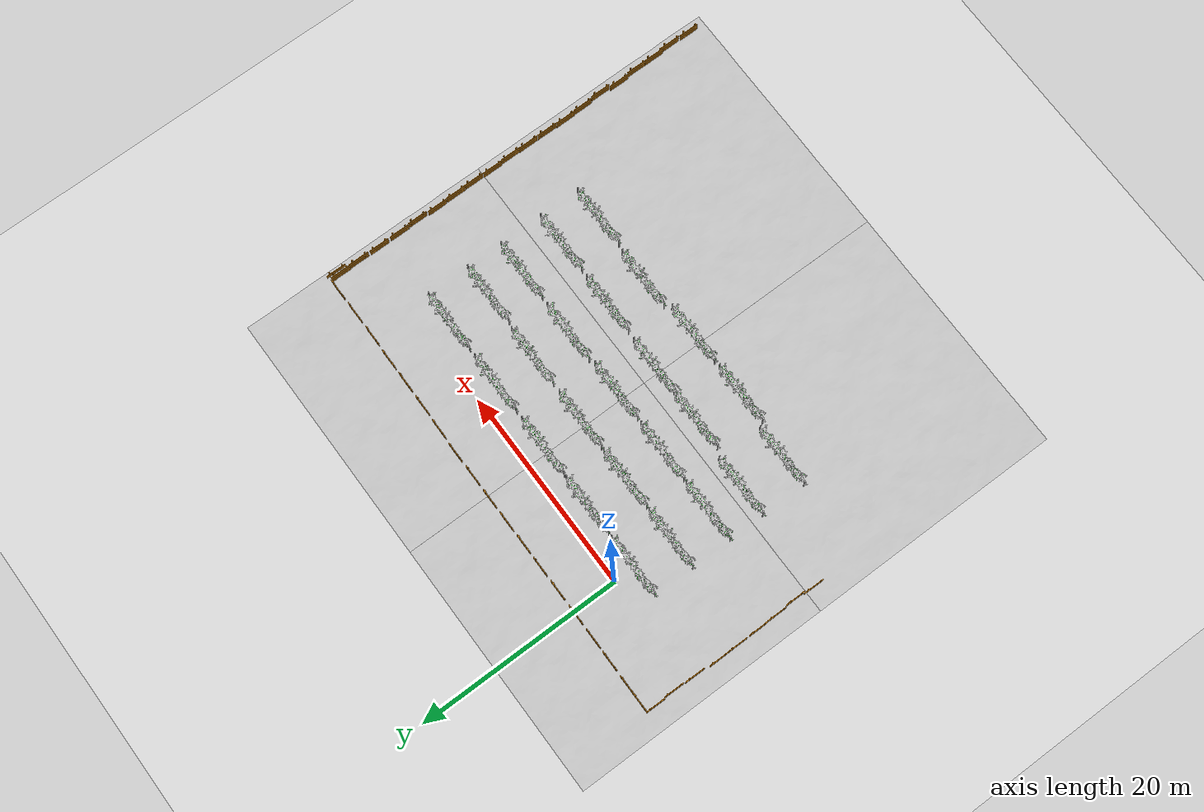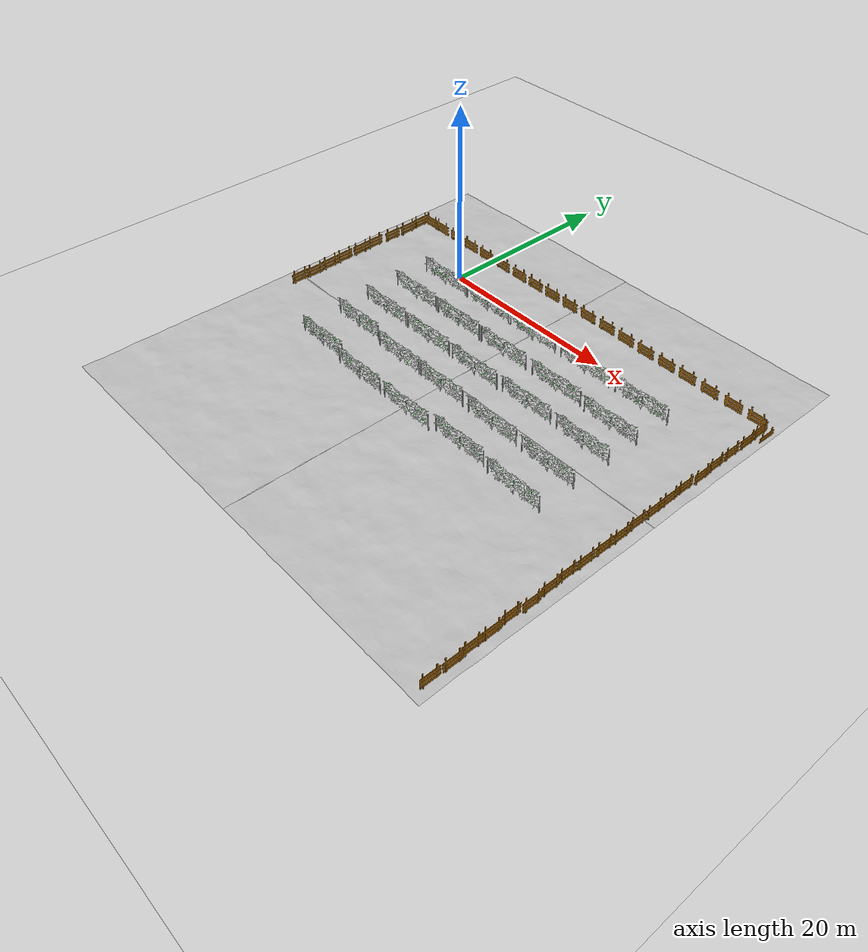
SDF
<sdf version="1.6">
 <world name="default">
  <light name="sun" type="directional">
   <pose>0 0 10 0 -0 0</pose>
   <diffuse>0.8 0.8 0.8 1</diffuse>
   <specular>0.2 0.2 0.2 1</specular>
   <attenuation>
    <range>1000</range>
    <constant>0.9</constant>
    <linear>0.01</linear>
    <quadratic>0.001</quadratic>
   </attenuation>
   <direction>-0.5 0.1 -0.9</direction>
  </light>
  <physics name="default_physics" default="0" type="ode">
   <real_time_update_rate>1000</real_time_update_rate>
   <real_time_factor>1</real_time_factor>
   <max_step_size>0.001</max_step_size>
  </physics>
  <gravity>0 0 -9.8</gravity>
  <magnetic_field>6e-06 2.3e-05 -4.2e-05</magnetic_field>
  <atmosphere type="adiabatic"/>
  <scene>
   <sky><clouds><speed>12</speed></clouds></sky>
   <shadows>1</shadows>
   <ambient>0.4 0.4 0.4 1</ambient>
   <background>0.7 0.7 0.7 1</background>
  </scene>
  <spherical_coordinates>
   <surface_model>EARTH_WGS84</surface_model>
   <latitude_deg>0</latitude_deg>
   <longitude_deg>0</longitude_deg>
   <elevation>0</elevation>
   <heading_deg>0</heading_deg>
  </spherical_coordinates>
  <model name="grass_ground_plane">
   <static>1</static>
   <link name="link">
    <collision name="collision">
     <geometry><plane><normal>0 0 1</normal><size>200 200</size></plane></geometry>
     <surface><friction><ode><mu>0.5</mu><mu2>0.5</mu2></ode></friction></surface>
    </collision>
    <visual name="visual">
     <cast_shadows>0</cast_shadows>
     <geometry><plane><normal>0 0 1</normal><size>200 200</size></plane></geometry>
     <material>
      <script>
       <uri>model://grass_ground_plane/materials/scripts/grass_ground_plane.material</uri>
       <name>GrassGroundPlane/Image</name>
      </script>
     </material>
    </visual>
   </link>
  </model>
  <model name="heightmap">
   <static>1</static>
   <link name="link">
    <collision name="collision">
     <geometry><mesh><uri>model://heightmap_realistic/meshes/heightmap.dae</uri></mesh></geometry>
    </collision>
    <visual name="visual">
     <geometry><mesh><uri>model://heightmap_realistic/meshes/heightmap.dae</uri></mesh></geometry>
    </visual>
   </link>
  </model>
  <model name="heightmap_1">
   <static>1</static>
   <link name="link">
    <collision name="collision">
     <geometry><mesh><uri>model://heightmap_realistic/meshes/heightmap.dae</uri></mesh></geometry>
    </collision>
    <visual name="visual">
     <geometry><mesh><uri>model://heightmap_realistic/meshes/heightmap.dae</uri></mesh></geometry>
    </visual>
   </link>
   <pose>25 -25 0 0 -0 0</pose>
  </model>
  <model name="heightmap_2">
   <static>1</static>
   <link name="link">
    <collision name="collision">
     <geometry><mesh><uri>model://heightmap_realistic/meshes/heightmap.dae</uri></mesh></geometry>
    </collision>
    <visual name="visual">
     <geometry><mesh><uri>model://heightmap_realistic/meshes/heightmap.dae</uri></mesh></geometry>
    </visual>
   </link>
   <pose>0 -25 0 0 -0 0</pose>
  </model>
  <model name="vine_t0_coarse">
   <static>1</static>
   <link name="link">
    <collision name="collision">
     <geometry><mesh><uri>model://vine_t0_coarse/meshes/vine_t0_coarse.dae</uri></mesh></geometry>
    </collision>
    <visual name="visual">
     <geometry><mesh><uri>model://vine_t0_coarse/meshes/vine_t0_coarse.dae</uri></mesh></geometry>
    </visual>
   </link>
   <pose>0 -2 0 0 -0 0</pose>
  </model>
  <model name="vine_t0_coarse_clone">
   <static>1</static>
   <link name="link">
    <collision name="collision">
     <geometry><mesh><uri>model://vine_t0_coarse/meshes/vine_t0_coarse.dae</uri></mesh></geometry>
    </collision>
    <visual name="visual">
     <geometry><mesh><uri>model://vine_t0_coarse/meshes/vine_t0_coarse.dae</uri></mesh></geometry>
    </visual>
   </link>
   <pose>6.5 -2 0 0 -0 0</pose>
  </model>
  <model name="vine_t0_coarse_clone_clone">
   <static>1</static>
   <link name="link">
    <collision name="collision">
     <geometry><mesh><uri>model://vine_t0_coarse/meshes/vine_t0_coarse.dae</uri></mesh></geometry>
    </collision>
    <visual name="visual">
     <geometry><mesh><uri>model://vine_t0_coarse/meshes/vine_t0_coarse.dae</uri></mesh></geometry>
    </visual>
   </link>
   <pose>13 -2 0 0 -0 0</pose>
  </model>
  <model name="vine_t0_coarse_clone_clone_0">
   <static>1</static>
   <link name="link">
    <collision name="collision">
     <geometry><mesh><uri>model://vine_t0_coarse/meshes/vine_t0_coarse.dae</uri></mesh></geometry>
    </collision>
    <visual name="visual">
     <geometry><mesh><uri>model://vine_t0_coarse/meshes/vine_t0_coarse.dae</uri></mesh></geometry>
    </visual>
   </link>
   <pose>20 -2 0 0 -0 0</pose>
  </model>
  <model name="vine_t0_coarse_clone_clone_1">
   <static>1</static>
   <link name="link">
    <collision name="collision">
     <geometry><mesh><uri>model://vine_t0_coarse/meshes/vine_t0_coarse.dae</uri></mesh></geometry>
    </collision>
    <visual name="visual">
     <geometry><mesh><uri>model://vine_t0_coarse/meshes/vine_t0_coarse.dae</uri></mesh></geometry>
    </visual>
   </link>
   <pose>27 -2 0 0 -0 0</pose>
  </model>
  <model name="vine_t0_coarse_clone_clone_2">
   <static>1</static>
   <link name="link">
    <collision name="collision">
     <geometry><mesh><uri>model://vine_t0_coarse/meshes/vine_t0_coarse.dae</uri></mesh></geometry>
    </collision>
    <visual name="visual">
     <geometry><mesh><uri>model://vine_t0_coarse/meshes/vine_t0_coarse.dae</uri></mesh></geometry>
    </visual>
   </link>
   <pose>0 -6 0 0 -0 0</pose>
  </model>
  <model name="vine_t0_coarse_clone_clone_3">
   <static>1</static>
   <link name="link">
    <collision name="collision">
     <geometry><mesh><uri>model://vine_t0_coarse/meshes/vine_t0_coarse.dae</uri></mesh></geometry>
    </collision>
    <visual name="visual">
     <geometry><mesh><uri>model://vine_t0_coarse/meshes/vine_t0_coarse.dae</uri></mesh></geometry>
    </visual>
   </link>
   <pose>0 -10 0 0 -0 0</pose>
  </model>
  <model name="vine_t0_coarse_clone_clone_4">
   <static>1</static>
   <link name="link">
    <collision name="collision">
     <geometry><mesh><uri>model://vine_t0_coarse/meshes/vine_t0_coarse.dae</uri></mesh></geometry>
    </collision>
    <visual name="visual">
     <geometry><mesh><uri>model://vine_t0_coarse/meshes/vine_t0_coarse.dae</uri></mesh></geometry>
    </visual>
   </link>
   <pose>0 -13.54 0 0 -0 0</pose>
  </model>
  <model name="vine_t0_coarse_clone_clone_5">
   <static>1</static>
   <link name="link">
    <collision name="collision">
     <geometry><mesh><uri>model://vine_t0_coarse/meshes/vine_t0_coarse.dae</uri></mesh></geometry>
    </collision>
    <visual name="visual">
     <geometry><mesh><uri>model://vine_t0_coarse/meshes/vine_t0_coarse.dae</uri></mesh></geometry>
    </visual>
   </link>
   <pose>6.5 -6 0 0 -0 0</pose>
  </model>
  <model name="vine_t0_coarse_clone_clone_6">
   <static>1</static>
   <link name="link">
    <collision name="collision">
     <geometry><mesh><uri>model://vine_t0_coarse/meshes/vine_t0_coarse.dae</uri></mesh></geometry>
    </collision>
    <visual name="visual">
     <geometry><mesh><uri>model://vine_t0_coarse/meshes/vine_t0_coarse.dae</uri></mesh></geometry>
    </visual>
   </link>
   <pose>6.5 -10 0 0 -0 0</pose>
  </model>
  <model name="vine_t0_coarse_clone_clone_7">
   <static>1</static>
   <link name="link">
    <collision name="collision">
     <geometry><mesh><uri>model://vine_t0_coarse/meshes/vine_t0_coarse.dae</uri></mesh></geometry>
    </collision>
    <visual name="visual">
     <geometry><mesh><uri>model://vine_t0_coarse/meshes/vine_t0_coarse.dae</uri></mesh></geometry>
    </visual>
   </link>
   <pose>7 -14 0 0 -0 0</pose>
  </model>
  <model name="vine_t0_coarse_clone_clone_8">
   <static>1</static>
   <link name="link">
    <collision name="collision">
     <geometry><mesh><uri>model://vine_t0_coarse/meshes/vine_t0_coarse.dae</uri></mesh></geometry>
    </collision>
    <visual name="visual">
     <geometry><mesh><uri>model://vine_t0_coarse/meshes/vine_t0_coarse.dae</uri></mesh></geometry>
    </visual>
   </link>
   <pose>13 -6 0 0 -0 0</pose>
  </model>
  <model name="vine_t0_coarse_clone_clone_9">
   <static>1</static>
   <link name="link">
    <collision name="collision">
     <geometry><mesh><uri>model://vine_t0_coarse/meshes/vine_t0_coarse.dae</uri></mesh></geometry>
    </collision>
    <visual name="visual">
     <geometry><mesh><uri>model://vine_t0_coarse/meshes/vine_t0_coarse.dae</uri></mesh></geometry>
    </visual>
   </link>
   <pose>13.2 -10 0 0 -0 0</pose>
  </model>
  <model name="vine_t0_coarse_clone_clone_10">
   <static>1</static>
   <link name="link">
    <collision name="collision">
     <geometry><mesh><uri>model://vine_t0_coarse/meshes/vine_t0_coarse.dae</uri></mesh></geometry>
    </collision>
    <visual name="visual">
     <geometry><mesh><uri>model://vine_t0_coarse/meshes/vine_t0_coarse.dae</uri></mesh></geometry>
    </visual>
   </link>
   <pose>12.9 -14 0 0 -0 0</pose>
  </model>
  <model name="vine_t0_coarse_clone_clone_11">
   <static>1</static>
   <link name="link">
    <collision name="collision">
     <geometry><mesh><uri>model://vine_t0_coarse/meshes/vine_t0_coarse.dae</uri></mesh></geometry>
    </collision>
    <visual name="visual">
     <geometry><mesh><uri>model://vine_t0_coarse/meshes/vine_t0_coarse.dae</uri></mesh></geometry>
    </visual>
   </link>
   <pose>20.1 -6.0129 0 0 -0 0</pose>
  </model>
  <model name="vine_t0_coarse_clone_clone_12">
   <static>1</static>
   <link name="link">
    <collision name="collision">
     <geometry><mesh><uri>model://vine_t0_coarse/meshes/vine_t0_coarse.dae</uri></mesh></geometry>
    </collision>
    <visual name="visual">
     <geometry><mesh><uri>model://vine_t0_coarse/meshes/vine_t0_coarse.dae</uri></mesh></geometry>
    </visual>
   </link>
   <pose>20 -9.8135 0 0 -0 0</pose>
  </model>
  <model name="vine_t0_coarse_clone_clone_13">
   <static>1</static>
   <link name="link">
    <collision name="collision">
     <geometry><mesh><uri>model://vine_t0_coarse/meshes/vine_t0_coarse.dae</uri></mesh></geometry>
    </collision>
    <visual name="visual">
     <geometry><mesh><uri>model://vine_t0_coarse/meshes/vine_t0_coarse.dae</uri></mesh></geometry>
    </visual>
   </link>
   <pose>20 -14.1038 0 0 -0 0</pose>
  </model>
  <model name="vine_t0_coarse_clone_clone_14">
   <static>1</static>
   <link name="link">
    <collision name="collision">
     <geometry><mesh><uri>model://vine_t0_coarse/meshes/vine_t0_coarse.dae</uri></mesh></geometry>
    </collision>
    <visual name="visual">
     <geometry><mesh><uri>model://vine_t0_coarse/meshes/vine_t0_coarse.dae</uri></mesh></geometry>
    </visual>
   </link>
   <pose>27 -6.2199 0 0 -0 0</pose>
  </model>
  <model name="vine_t0_coarse_clone_clone_15">
   <static>1</static>
   <link name="link">
    <collision name="collision">
     <geometry><mesh><uri>model://vine_t0_coarse/meshes/vine_t0_coarse.dae</uri></mesh></geometry>
    </collision>
    <visual name="visual">
     <geometry><mesh><uri>model://vine_t0_coarse/meshes/vine_t0_coarse.dae</uri></mesh></geometry>
    </visual>
   </link>
   <pose>27 -9.8499 0 0 -0 0</pose>
  </model>
  <model name="vine_t0_coarse_clone_clone_16">
   <static>1</static>
   <link name="link">
    <collision name="collision">
     <geometry><mesh><uri>model://vine_t0_coarse/meshes/vine_t0_coarse.dae</uri></mesh></geometry>
    </collision>
    <visual name="visual">
     <geometry><mesh><uri>model://vine_t0_coarse/meshes/vine_t0_coarse.dae</uri></mesh></geometry>
    </visual>
   </link>
   <pose>27 -14.1902 0 0 -0 0</pose>
  </model>
  <model name="vine_t0_coarse_clone_clone_17">
   <static>1</static>
   <link name="link">
    <collision name="collision">
     <geometry><mesh><uri>model://vine_t0_coarse/meshes/vine_t0_coarse.dae</uri></mesh></geometry>
    </collision>
    <visual name="visual">
     <geometry><mesh><uri>model://vine_t0_coarse/meshes/vine_t0_coarse.dae</uri></mesh></geometry>
    </visual>
   </link>
   <pose>0 -18 0 0 -0 0</pose>
  </model>
  <model name="vine_t0_coarse_clone_clone_18">
   <static>1</static>
   <link name="link">
    <collision name="collision">
     <geometry><mesh><uri>model://vine_t0_coarse/meshes/vine_t0_coarse.dae</uri></mesh></geometry>
    </collision>
    <visual name="visual">
     <geometry><mesh><uri>model://vine_t0_coarse/meshes/vine_t0_coarse.dae</uri></mesh></geometry>
    </visual>
   </link>
   <pose>6.5 -18.5457 0 0 -0 0</pose>
  </model>
  <model name="vine_t0_coarse_clone_clone_19">
   <static>1</static>
   <link name="link">
    <collision name="collision">
     <geometry><mesh><uri>model://vine_t0_coarse/meshes/vine_t0_coarse.dae</uri></mesh></geometry>
    </collision>
    <visual name="visual">
     <geometry><mesh><uri>model://vine_t0_coarse/meshes/vine_t0_coarse.dae</uri></mesh></geometry>
    </visual>
   </link>
   <pose>13.3 -18.5 0 0 -0 0</pose>
  </model>
  <model name="vine_t0_coarse_clone_clone_20">
   <static>1</static>
   <link name="link">
    <collision name="collision">
     <geometry><mesh><uri>model://vine_t0_coarse/meshes/vine_t0_coarse.dae</uri></mesh></geometry>
    </collision>
    <visual name="visual">
     <geometry><mesh><uri>model://vine_t0_coarse/meshes/vine_t0_coarse.dae</uri></mesh></geometry>
    </visual>
   </link>
   <pose>20 -18 0 0 -0 0</pose>
  </model>
  <model name="vine_t0_coarse_clone_clone_21">
   <static>1</static>
   <link name="link">
    <collision name="collision">
     <geometry><mesh><uri>model://vine_t0_coarse/meshes/vine_t0_coarse.dae</uri></mesh></geometry>
    </collision>
    <visual name="visual">
     <geometry><mesh><uri>model://vine_t0_coarse/meshes/vine_t0_coarse.dae</uri></mesh></geometry>
    </visual>
   </link>
   <pose>27 -18.2744 0 0 -0 0</pose>
  </model>
  <model name="wooden_fence_12">
   <static>1</static>
   <link name="link">
    <inertial>
     <mass>100</mass>
     <inertia><ixx>192.33</ixx><ixy>0</ixy><ixz>0</ixz><iyy>12.33</iyy><iyz>0</iyz><izz>204</izz></inertia>
    </inertial>
    <collision name="collision">
     <geometry><mesh><uri>model://wooden_fence/meshes/fence.dae</uri><scale>1 1 1</scale></mesh></geometry>
    </collision>
    <visual name="visual">
     <geometry><mesh><uri>model://wooden_fence/meshes/fence.dae</uri><scale>1 1 1</scale></mesh></geometry>
    </visual>
   </link>
   <pose>35.9913 1.73301 0 0 -0 1.5708</pose>
  </model>
  <model name="wooden_fence_16">
   <static>1</static>
   <link name="link">
    <inertial>
     <mass>100</mass>
     <inertia><ixx>192.33</ixx><ixy>0</ixy><ixz>0</ixz><iyy>12.33</iyy><iyz>0</iyz><izz>204</izz></inertia>
    </inertial>
    <collision name="collision">
     <geometry><mesh><uri>model://wooden_fence/meshes/fence.dae</uri><scale>1 1 1</scale></mesh></geometry>
    </collision>
    <visual name="visual">
     <geometry><mesh><uri>model://wooden_fence/meshes/fence.dae</uri><scale>1 1 1</scale></mesh></geometry>
    </visual>
   </link>
   <pose>-9.2867 5.4693 0.66 0 -0 0</pose>
  </model>
  <model name="heightmap_0">
   <static>1</static>
   <link name="link">
    <collision name="collision">
     <geometry><mesh><uri>model://heightmap_realistic/meshes/heightmap.dae</uri></mesh></geometry>
    </collision>
    <visual name="visual">
     <geometry><mesh><uri>model://heightmap_realistic/meshes/heightmap.dae</uri></mesh></geometry>
    </visual>
   </link>
   <pose>25 0 0 0 -0 0</pose>
  </model>
  <model name="wooden_fence">
   <static>1</static>
   <link name="link">
    <inertial>
     <mass>100</mass>
     <inertia><ixx>192.33</ixx><ixy>0</ixy><ixz>0</ixz><iyy>12.33</iyy><iyz>0</iyz><izz>204</izz></inertia>
    </inertial>
    <collision name="collision">
     <geometry><mesh><uri>model://wooden_fence/meshes/fence.dae</uri><scale>1 1 1</scale></mesh></geometry>
    </collision>
    <visual name="visual">
     <geometry><mesh><uri>model://wooden_fence/meshes/fence.dae</uri><scale>1 1 1</scale></mesh></geometry>
    </visual>
   </link>
   <pose>-6.79434 5.4444 0.66 0 -0 0</pose>
  </model>
  <model name="wooden_fence_0">
   <static>1</static>
   <link name="link">
    <inertial>
     <mass>100</mass>
     <inertia><ixx>192.33</ixx><ixy>0</ixy><ixz>0</ixz><iyy>12.33</iyy><iyz>0</iyz><izz>204</izz></inertia>
    </inertial>
    <collision name="collision">
     <geometry><mesh><uri>model://wooden_fence/meshes/fence.dae</uri><scale>1 1 1</scale></mesh></geometry>
    </collision>
    <visual name="visual">
     <geometry><mesh><uri>model://wooden_fence/meshes/fence.dae</uri><scale>1 1 1</scale></mesh></geometry>
    </visual>
   </link>
   <pose>-4.44566 5.42359 0.66 0 -0 0</pose>
  </model>
  <model name="wooden_fence_1">
   <static>1</static>
   <link name="link">
    <inertial>
     <mass>100</mass>
     <inertia><ixx>192.33</ixx><ixy>0</ixy><ixz>0</ixz><iyy>12.33</iyy><iyz>0</iyz><izz>204</izz></inertia>
    </inertial>
    <collision name="collision">
     <geometry><mesh><uri>model://wooden_fence/meshes/fence.dae</uri><scale>1 1 1</scale></mesh></geometry>
    </collision>
    <visual name="visual">
     <geometry><mesh><uri>model://wooden_fence/meshes/fence.dae</uri><scale>1 1 1</scale></mesh></geometry>
    </visual>
   </link>
   <pose>-1.94114 5.41665 0.66 0 -0 0</pose>
  </model>
  <model name="wooden_fence_2">
   <static>1</static>
   <link name="link">
    <inertial>
     <mass>100</mass>
     <inertia><ixx>192.33</ixx><ixy>0</ixy><ixz>0</ixz><iyy>12.33</iyy><iyz>0</iyz><izz>204</izz></inertia>
    </inertial>
    <collision name="collision">
     <geometry><mesh><uri>model://wooden_fence/meshes/fence.dae</uri><scale>1 1 1</scale></mesh></geometry>
    </collision>
    <visual name="visual">
     <geometry><mesh><uri>model://wooden_fence/meshes/fence.dae</uri><scale>1 1 1</scale></mesh></geometry>
    </visual>
   </link>
   <pose>0.640969 5.40785 0.66 0 -0 0</pose>
  </model>
  <model name="wooden_fence_3">
   <static>1</static>
   <link name="link">
    <inertial>
     <mass>100</mass>
     <inertia><ixx>192.33</ixx><ixy>0</ixy><ixz>0</ixz><iyy>12.33</iyy><iyz>0</iyz><izz>204</izz></inertia>
    </inertial>
    <collision name="collision">
     <geometry><mesh><uri>model://wooden_fence/meshes/fence.dae</uri><scale>1 1 1</scale></mesh></geometry>
    </collision>
    <visual name="visual">
     <geometry><mesh><uri>model://wooden_fence/meshes/fence.dae</uri><scale>1 1 1</scale></mesh></geometry>
    </visual>
   </link>
   <pose>3.18548 5.41094 0.66 0 -0 0</pose>
  </model>
  <model name="wooden_fence_4">
   <static>1</static>
   <link name="link">
    <inertial>
     <mass>100</mass>
     <inertia><ixx>192.33</ixx><ixy>0</ixy><ixz>0</ixz><iyy>12.33</iyy><iyz>0</iyz><izz>204</izz></inertia>
    </inertial>
    <collision name="collision">
     <geometry><mesh><uri>model://wooden_fence/meshes/fence.dae</uri><scale>1 1 1</scale></mesh></geometry>
    </collision>
    <visual name="visual">
     <geometry><mesh><uri>model://wooden_fence/meshes/fence.dae</uri><scale>1 1 1</scale></mesh></geometry>
    </visual>
   </link>
   <pose>5.60159 5.40146 0.66 0 -0 0</pose>
  </model>
  <model name="wooden_fence_5">
   <static>1</static>
   <link name="link">
    <inertial>
     <mass>100</mass>
     <inertia><ixx>192.33</ixx><ixy>0</ixy><ixz>0</ixz><iyy>12.33</iyy><iyz>0</iyz><izz>204</izz></inertia>
    </inertial>
    <collision name="collision">
     <geometry><mesh><uri>model://wooden_fence/meshes/fence.dae</uri><scale>1 1 1</scale></mesh></geometry>
    </collision>
    <visual name="visual">
     <geometry><mesh><uri>model://wooden_fence/meshes/fence.dae</uri><scale>1 1 1</scale></mesh></geometry>
    </visual>
   </link>
   <pose>8.02873 5.41528 0.66 0 -0 0</pose>
  </model>
  <model name="wooden_fence_6">
   <static>1</static>
   <link name="link">
    <inertial>
     <mass>100</mass>
     <inertia><ixx>192.33</ixx><ixy>0</ixy><ixz>0</ixz><iyy>12.33</iyy><iyz>0</iyz><izz>204</izz></inertia>
    </inertial>
    <collision name="collision">
     <geometry><mesh><uri>model://wooden_fence/meshes/fence.dae</uri><scale>1 1 1</scale></mesh></geometry>
    </collision>
    <visual name="visual">
     <geometry><mesh><uri>model://wooden_fence/meshes/fence.dae</uri><scale>1 1 1</scale></mesh></geometry>
    </visual>
   </link>
   <pose>10.5315 5.41729 0.66 0 -0 0</pose>
  </model>
  <model name="wooden_fence_7">
   <static>1</static>
   <link name="link">
    <inertial>
     <mass>100</mass>
     <inertia><ixx>192.33</ixx><ixy>0</ixy><ixz>0</ixz><iyy>12.33</iyy><iyz>0</iyz><izz>204</izz></inertia>
    </inertial>
    <collision name="collision">
     <geometry><mesh><uri>model://wooden_fence/meshes/fence.dae</uri><scale>1 1 1</scale></mesh></geometry>
    </collision>
    <visual name="visual">
     <geometry><mesh><uri>model://wooden_fence/meshes/fence.dae</uri><scale>1 1 1</scale></mesh></geometry>
    </visual>
   </link>
   <pose>13.0657 5.40562 0.66 0 -0 0</pose>
  </model>
  <model name="wooden_fence_8">
   <static>1</static>
   <link name="link">
    <inertial>
     <mass>100</mass>
     <inertia><ixx>192.33</ixx><ixy>0</ixy><ixz>0</ixz><iyy>12.33</iyy><iyz>0</iyz><izz>204</izz></inertia>
    </inertial>
    <collision name="collision">
     <geometry><mesh><uri>model://wooden_fence/meshes/fence.dae</uri><scale>1 1 1</scale></mesh></geometry>
    </collision>
    <visual name="visual">
     <geometry><mesh><uri>model://wooden_fence/meshes/fence.dae</uri><scale>1 1 1</scale></mesh></geometry>
    </visual>
   </link>
   <pose>15.6059 5.42849 0.66 0 -0 0</pose>
  </model>
  <model name="wooden_fence_9">
   <static>1</static>
   <link name="link">
    <inertial>
     <mass>100</mass>
     <inertia><ixx>192.33</ixx><ixy>0</ixy><ixz>0</ixz><iyy>12.33</iyy><iyz>0</iyz><izz>204</izz></inertia>
    </inertial>
    <collision name="collision">
     <geometry><mesh><uri>model://wooden_fence/meshes/fence.dae</uri><scale>1 1 1</scale></mesh></geometry>
    </collision>
    <visual name="visual">
     <geometry><mesh><uri>model://wooden_fence/meshes/fence.dae</uri><scale>1 1 1</scale></mesh></geometry>
    </visual>
   </link>
   <pose>18.1572 5.35539 0.66 0 -0 0</pose>
  </model>
  <model name="wooden_fence_10">
   <static>1</static>
   <link name="link">
    <inertial>
     <mass>100</mass>
     <inertia><ixx>192.33</ixx><ixy>0</ixy><ixz>0</ixz><iyy>12.33</iyy><iyz>0</iyz><izz>204</izz></inertia>
    </inertial>
    <collision name="collision">
     <geometry><mesh><uri>model://wooden_fence/meshes/fence.dae</uri><scale>1 1 1</scale></mesh></geometry>
    </collision>
    <visual name="visual">
     <geometry><mesh><uri>model://wooden_fence/meshes/fence.dae</uri><scale>1 1 1</scale></mesh></geometry>
    </visual>
   </link>
   <pose>20.7286 5.29085 0.66 0 -0 0</pose>
  </model>
  <model name="wooden_fence_11">
   <static>1</static>
   <link name="link">
    <inertial>
     <mass>100</mass>
     <inertia><ixx>192.33</ixx><ixy>0</ixy><ixz>0</ixz><iyy>12.33</iyy><iyz>0</iyz><izz>204</izz></inertia>
    </inertial>
    <collision name="collision">
     <geometry><mesh><uri>model://wooden_fence/meshes/fence.dae</uri><scale>1 1 1</scale></mesh></geometry>
    </collision>
    <visual name="visual">
     <geometry><mesh><uri>model://wooden_fence/meshes/fence.dae</uri><scale>1 1 1</scale></mesh></geometry>
    </visual>
   </link>
   <pose>23.3421 5.26949 0.66 0 -0 0</pose>
  </model>
  <model name="wooden_fence_13">
   <static>1</static>
   <link name="link">
    <inertial>
     <mass>100</mass>
     <inertia><ixx>192.33</ixx><ixy>0</ixy><ixz>0</ixz><iyy>12.33</iyy><iyz>0</iyz><izz>204</izz></inertia>
    </inertial>
    <collision name="collision">
     <geometry><mesh><uri>model://wooden_fence/meshes/fence.dae</uri><scale>1 1 1</scale></mesh></geometry>
    </collision>
    <visual name="visual">
     <geometry><mesh><uri>model://wooden_fence/meshes/fence.dae</uri><scale>1 1 1</scale></mesh></geometry>
    </visual>
   </link>
   <pose>25.858 5.24726 0.66 0 -0 0</pose>
  </model>
  <model name="wooden_fence_14">
   <static>1</static>
   <link name="link">
    <inertial>
     <mass>100</mass>
     <inertia><ixx>192.33</ixx><ixy>0</ixy><ixz>0</ixz><iyy>12.33</iyy><iyz>0</iyz><izz>204</izz></inertia>
    </inertial>
    <collision name="collision">
     <geometry><mesh><uri>model://wooden_fence/meshes/fence.dae</uri><scale>1 1 1</scale></mesh></geometry>
    </collision>
    <visual name="visual">
     <geometry><mesh><uri>model://wooden_fence/meshes/fence.dae</uri><scale>1 1 1</scale></mesh></geometry>
    </visual>
   </link>
   <pose>28.5272 5.19276 0.66 0 -0 0</pose>
  </model>
  <model name="wooden_fence_15">
   <static>1</static>
   <link name="link">
    <inertial>
     <mass>100</mass>
     <inertia><ixx>192.33</ixx><ixy>0</ixy><ixz>0</ixz><iyy>12.33</iyy><iyz>0</iyz><izz>204</izz></inertia>
    </inertial>
    <collision name="collision">
     <geometry><mesh><uri>model://wooden_fence/meshes/fence.dae</uri><scale>1 1 1</scale></mesh></geometry>
    </collision>
    <visual name="visual">
     <geometry><mesh><uri>model://wooden_fence/meshes/fence.dae</uri><scale>1 1 1</scale></mesh></geometry>
    </visual>
   </link>
   <pose>31.2176 5.19126 0.66 0 -0 0</pose>
  </model>
  <model name="wooden_fence_17">
   <static>1</static>
   <link name="link">
    <inertial>
     <mass>100</mass>
     <inertia><ixx>192.33</ixx><ixy>0</ixy><ixz>0</ixz><iyy>12.33</iyy><iyz>0</iyz><izz>204</izz></inertia>
    </inertial>
    <collision name="collision">
     <geometry><mesh><uri>model://wooden_fence/meshes/fence.dae</uri><scale>1 1 1</scale></mesh></geometry>
    </collision>
    <visual name="visual">
     <geometry><mesh><uri>model://wooden_fence/meshes/fence.dae</uri><scale>1 1 1</scale></mesh></geometry>
    </visual>
   </link>
   <pose>33.8163 5.20085 0.66 0 -0 0</pose>
  </model>
  <model name="wooden_fence_18">
   <static>1</static>
   <link name="link">
    <inertial>
     <mass>100</mass>
     <inertia><ixx>192.33</ixx><ixy>0</ixy><ixz>0</ixz><iyy>12.33</iyy><iyz>0</iyz><izz>204</izz></inertia>
    </inertial>
    <collision name="collision">
     <geometry><mesh><uri>model://wooden_fence/meshes/fence.dae</uri><scale>1 1 1</scale></mesh></geometry>
    </collision>
    <visual name="visual">
     <geometry><mesh><uri>model://wooden_fence/meshes/fence.dae</uri><scale>1 1 1</scale></mesh></geometry>
    </visual>
   </link>
   <pose>-11.0524 5.47712 0.66 0 -0 0</pose>
  </model>
  <model name="wooden_fence_12_clone">
   <static>1</static>
   <link name="link">
    <inertial>
     <mass>100</mass>
     <inertia><ixx>192.33</ixx><ixy>0</ixy><ixz>0</ixz><iyy>12.33</iyy><iyz>0</iyz><izz>204</izz></inertia>
    </inertial>
    <collision name="collision">
     <geometry><mesh><uri>model://wooden_fence/meshes/fence.dae</uri><scale>1 1 1</scale></mesh></geometry>
    </collision>
    <visual name="visual">
     <geometry><mesh><uri>model://wooden_fence/meshes/fence.dae</uri><scale>1 1 1</scale></mesh></geometry>
    </visual>
   </link>
   <pose>35.417 1.53592 0.66 0 -0 1.5708</pose>
  </model>
  <model name="wooden_fence_12_clone_0">
   <static>1</static>
   <link name="link">
    <inertial>
     <mass>100</mass>
     <inertia><ixx>192.33</ixx><ixy>0</ixy><ixz>0</ixz><iyy>12.33</iyy><iyz>0</iyz><izz>204</izz></inertia>
    </inertial>
    <collision name="collision">
     <geometry><mesh><uri>model://wooden_fence/meshes/fence.dae</uri><scale>1 1 1</scale></mesh></geometry>
    </collision>
    <visual name="visual">
     <geometry><mesh><uri>model://wooden_fence/meshes/fence.dae</uri><scale>1 1 1</scale></mesh></geometry>
    </visual>
   </link>
   <pose>35.4675 -0.469485 0.66 0 -0 1.5708</pose>
  </model>
  <model name="wooden_fence_12_clone_1">
   <static>1</static>
   <link name="link">
    <inertial>
     <mass>100</mass>
     <inertia><ixx>192.33</ixx><ixy>0</ixy><ixz>0</ixz><iyy>12.33</iyy><iyz>0</iyz><izz>204</izz></inertia>
    </inertial>
    <collision name="collision">
     <geometry><mesh><uri>model://wooden_fence/meshes/fence.dae</uri><scale>1 1 1</scale></mesh></geometry>
    </collision>
    <visual name="visual">
     <geometry><mesh><uri>model://wooden_fence/meshes/fence.dae</uri><scale>1 1 1</scale></mesh></geometry>
    </visual>
   </link>
   <pose>35.422 -2.61868 0.66 0 -0 1.5708</pose>
  </model>
  <model name="wooden_fence_12_clone_2">
   <static>1</static>
   <link name="link">
    <inertial>
     <mass>100</mass>
     <inertia><ixx>192.33</ixx><ixy>0</ixy><ixz>0</ixz><iyy>12.33</iyy><iyz>0</iyz><izz>204</izz></inertia>
    </inertial>
    <collision name="collision">
     <geometry><mesh><uri>model://wooden_fence/meshes/fence.dae</uri><scale>1 1 1</scale></mesh></geometry>
    </collision>
    <visual name="visual">
     <geometry><mesh><uri>model://wooden_fence/meshes/fence.dae</uri><scale>1 1 1</scale></mesh></geometry>
    </visual>
   </link>
   <pose>35.4244 -4.80023 0.66 0 -0 1.5708</pose>
  </model>
  <model name="wooden_fence_12_clone_3">
   <static>1</static>
   <link name="link">
    <inertial>
     <mass>100</mass>
     <inertia><ixx>192.33</ixx><ixy>0</ixy><ixz>0</ixz><iyy>12.33</iyy><iyz>0</iyz><izz>204</izz></inertia>
    </inertial>
    <collision name="collision">
     <geometry><mesh><uri>model://wooden_fence/meshes/fence.dae</uri><scale>1 1 1</scale></mesh></geometry>
    </collision>
    <visual name="visual">
     <geometry><mesh><uri>model://wooden_fence/meshes/fence.dae</uri><scale>1 1 1</scale></mesh></geometry>
    </visual>
   </link>
   <pose>35.4929 -6.81323 0.66 0 -0 1.5708</pose>
  </model>
  <model name="wooden_fence_12_clone_4">
   <static>1</static>
   <link name="link">
    <inertial>
     <mass>100</mass>
     <inertia><ixx>192.33</ixx><ixy>0</ixy><ixz>0</ixz><iyy>12.33</iyy><iyz>0</iyz><izz>204</izz></inertia>
    </inertial>
    <collision name="collision">
     <geometry><mesh><uri>model://wooden_fence/meshes/fence.dae</uri><scale>1 1 1</scale></mesh></geometry>
    </collision>
    <visual name="visual">
     <geometry><mesh><uri>model://wooden_fence/meshes/fence.dae</uri><scale>1 1 1</scale></mesh></geometry>
    </visual>
   </link>
   <pose>35.3729 -8.89235 0.66 0 -0 1.5708</pose>
  </model>
  <model name="wooden_fence_12_clone_5">
   <static>1</static>
   <link name="link">
    <inertial>
     <mass>100</mass>
     <inertia><ixx>192.33</ixx><ixy>0</ixy><ixz>0</ixz><iyy>12.33</iyy><iyz>0</iyz><izz>204</izz></inertia>
    </inertial>
    <collision name="collision">
     <geometry><mesh><uri>model://wooden_fence/meshes/fence.dae</uri><scale>1 1 1</scale></mesh></geometry>
    </collision>
    <visual name="visual">
     <geometry><mesh><uri>model://wooden_fence/meshes/fence.dae</uri><scale>1 1 1</scale></mesh></geometry>
    </visual>
   </link>
   <pose>35.4126 -10.9275 0.66 0 -0 1.5708</pose>
  </model>
  <model name="wooden_fence_12_clone_6">
   <static>1</static>
   <link name="link">
    <inertial>
     <mass>100</mass>
     <inertia><ixx>192.33</ixx><ixy>0</ixy><ixz>0</ixz><iyy>12.33</iyy><iyz>0</iyz><izz>204</izz></inertia>
    </inertial>
    <collision name="collision">
     <geometry><mesh><uri>model://wooden_fence/meshes/fence.dae</uri><scale>1 1 1</scale></mesh></geometry>
    </collision>
    <visual name="visual">
     <geometry><mesh><uri>model://wooden_fence/meshes/fence.dae</uri><scale>1 1 1</scale></mesh></geometry>
    </visual>
   </link>
   <pose>35.435 -12.9453 0.66 0 -0 1.5708</pose>
  </model>
  <model name="wooden_fence_12_clone_7">
   <static>1</static>
   <link name="link">
    <inertial>
     <mass>100</mass>
     <inertia><ixx>192.33</ixx><ixy>0</ixy><ixz>0</ixz><iyy>12.33</iyy><iyz>0</iyz><izz>204</izz></inertia>
    </inertial>
    <collision name="collision">
     <geometry><mesh><uri>model://wooden_fence/meshes/fence.dae</uri><scale>1 1 1</scale></mesh></geometry>
    </collision>
    <visual name="visual">
     <geometry><mesh><uri>model://wooden_fence/meshes/fence.dae</uri><scale>1 1 1</scale></mesh></geometry>
    </visual>
   </link>
   <pose>35.387 -14.9602 0.66 0 -0 1.5708</pose>
  </model>
  <model name="wooden_fence_12_clone_8">
   <static>1</static>
   <link name="link">
    <inertial>
     <mass>100</mass>
     <inertia><ixx>192.33</ixx><ixy>0</ixy><ixz>0</ixz><iyy>12.33</iyy><iyz>0</iyz><izz>204</izz></inertia>
    </inertial>
    <collision name="collision">
     <geometry><mesh><uri>model://wooden_fence/meshes/fence.dae</uri><scale>1 1 1</scale></mesh></geometry>
    </collision>
    <visual name="visual">
     <geometry><mesh><uri>model://wooden_fence/meshes/fence.dae</uri><scale>1 1 1</scale></mesh></geometry>
    </visual>
   </link>
   <pose>35.4556 -16.9795 0.66 0 -0 1.5708</pose>
  </model>
  <model name="wooden_fence_12_clone_9">
   <static>1</static>
   <link name="link">
    <inertial>
     <mass>100</mass>
     <inertia><ixx>192.33</ixx><ixy>0</ixy><ixz>0</ixz><iyy>12.33</iyy><iyz>0</iyz><izz>204</izz></inertia>
    </inertial>
    <collision name="collision">
     <geometry><mesh><uri>model://wooden_fence/meshes/fence.dae</uri><scale>1 1 1</scale></mesh></geometry>
    </collision>
    <visual name="visual">
     <geometry><mesh><uri>model://wooden_fence/meshes/fence.dae</uri><scale>1 1 1</scale></mesh></geometry>
    </visual>
   </link>
   <pose>35.4143 -18.9475 0.66 0 -0 1.5708</pose>
  </model>
  <model name="wooden_fence_12_clone_10">
   <static>1</static>
   <link name="link">
    <inertial>
     <mass>100</mass>
     <inertia><ixx>192.33</ixx><ixy>0</ixy><ixz>0</ixz><iyy>12.33</iyy><iyz>0</iyz><izz>204</izz></inertia>
    </inertial>
    <collision name="collision">
     <geometry><mesh><uri>model://wooden_fence/meshes/fence.dae</uri><scale>1 1 1</scale></mesh></geometry>
    </collision>
    <visual name="visual">
     <geometry><mesh><uri>model://wooden_fence/meshes/fence.dae</uri><scale>1 1 1</scale></mesh></geometry>
    </visual>
   </link>
   <pose>35.4011 -21.0305 0.66 0 -0 1.5708</pose>
  </model>
  <model name="wooden_fence_12_clone_11">
   <static>1</static>
   <link name="link">
    <inertial>
     <mass>100</mass>
     <inertia><ixx>192.33</ixx><ixy>0</ixy><ixz>0</ixz><iyy>12.33</iyy><iyz>0</iyz><izz>204</izz></inertia>
    </inertial>
    <collision name="collision">
     <geometry><mesh><uri>model://wooden_fence/meshes/fence.dae</uri><scale>1 1 1</scale></mesh></geometry>
    </collision>
    <visual name="visual">
     <geometry><mesh><uri>model://wooden_fence/meshes/fence.dae</uri><scale>1 1 1</scale></mesh></geometry>
    </visual>
   </link>
   <pose>35.3451 -23.0553 0.66 0 -0 1.5708</pose>
  </model>
  <model name="wooden_fence_12_clone_12">
   <static>1</static>
   <link name="link">
    <inertial>
     <mass>100</mass>
     <inertia><ixx>192.33</ixx><ixy>0</ixy><ixz>0</ixz><iyy>12.33</iyy><iyz>0</iyz><izz>204</izz></inertia>
    </inertial>
    <collision name="collision">
     <geometry><mesh><uri>model://wooden_fence/meshes/fence.dae</uri><scale>1 1 1</scale></mesh></geometry>
    </collision>
    <visual name="visual">
     <geometry><mesh><uri>model://wooden_fence/meshes/fence.dae</uri><scale>1 1 1</scale></mesh></geometry>
    </visual>
   </link>
   <pose>35.4027 -25.0051 0.66 0 -0 1.5708</pose>
  </model>
  <model name="wooden_fence_12_clone_13">
   <static>1</static>
   <link name="link">
    <inertial>
     <mass>100</mass>
     <inertia><ixx>192.33</ixx><ixy>0</ixy><ixz>0</ixz><iyy>12.33</iyy><iyz>0</iyz><izz>204</izz></inertia>
    </inertial>
    <collision name="collision">
     <geometry><mesh><uri>model://wooden_fence/meshes/fence.dae</uri><scale>1 1 1</scale></mesh></geometry>
    </collision>
    <visual name="visual">
     <geometry><mesh><uri>model://wooden_fence/meshes/fence.dae</uri><scale>1 1 1</scale></mesh></geometry>
    </visual>
   </link>
   <pose>35.5312 -27.1029 0.66 0 -0 1.5708</pose>
  </model>
  <model name="wooden_fence_12_clone_14">
   <static>1</static>
   <link name="link">
    <inertial>
     <mass>100</mass>
     <inertia><ixx>192.33</ixx><ixy>0</ixy><ixz>0</ixz><iyy>12.33</iyy><iyz>0</iyz><izz>204</izz></inertia>
    </inertial>
    <collision name="collision">
     <geometry><mesh><uri>model://wooden_fence/meshes/fence.dae</uri><scale>1 1 1</scale></mesh></geometry>
    </collision>
    <visual name="visual">
     <geometry><mesh><uri>model://wooden_fence/meshes/fence.dae</uri><scale>1 1 1</scale></mesh></geometry>
    </visual>
   </link>
   <pose>35.3298 -29.0717 0.66 0 -0 1.5708</pose>
  </model>
  <model name="wooden_fence_12_clone_15">
   <static>1</static>
   <link name="link">
    <inertial>
     <mass>100</mass>
     <inertia><ixx>192.33</ixx><ixy>0</ixy><ixz>0</ixz><iyy>12.33</iyy><iyz>0</iyz><izz>204</izz></inertia>
    </inertial>
    <collision name="collision">
     <geometry><mesh><uri>model://wooden_fence/meshes/fence.dae</uri><scale>1 1 1</scale></mesh></geometry>
    </collision>
    <visual name="visual">
     <geometry><mesh><uri>model://wooden_fence/meshes/fence.dae</uri><scale>1 1 1</scale></mesh></geometry>
    </visual>
   </link>
   <pose>35.463 -31.1525 0.66 0 -0 1.5708</pose>
  </model>
  <model name="wooden_fence_12_clone_16">
   <static>1</static>
   <link name="link">
    <inertial>
     <mass>100</mass>
     <inertia><ixx>192.33</ixx><ixy>0</ixy><ixz>0</ixz><iyy>12.33</iyy><iyz>0</iyz><izz>204</izz></inertia>
    </inertial>
    <collision name="collision">
     <geometry><mesh><uri>model://wooden_fence/meshes/fence.dae</uri><scale>1 1 1</scale></mesh></geometry>
    </collision>
    <visual name="visual">
     <geometry><mesh><uri>model://wooden_fence/meshes/fence.dae</uri><scale>1 1 1</scale></mesh></geometry>
    </visual>
   </link>
   <pose>35.4526 -33.1305 0.66 0 -0 1.5708</pose>
  </model>
  <model name="wooden_fence_12_clone_17">
   <static>1</static>
   <link name="link">
    <inertial>
     <mass>100</mass>
     <inertia><ixx>192.33</ixx><ixy>0</ixy><ixz>0</ixz><iyy>12.33</iyy><iyz>0</iyz><izz>204</izz></inertia>
    </inertial>
    <collision name="collision">
     <geometry><mesh><uri>model://wooden_fence/meshes/fence.dae</uri><scale>1 1 1</scale></mesh></geometry>
    </collision>
    <visual name="visual">
     <geometry><mesh><uri>model://wooden_fence/meshes/fence.dae</uri><scale>1 1 1</scale></mesh></geometry>
    </visual>
   </link>
   <pose>35.5653 -35.0813 0.66 0 -0 1.5708</pose>
  </model>
  <model name="wooden_fence_12_clone_18">
   <static>1</static>
   <link name="link">
    <inertial>
     <mass>100</mass>
     <inertia><ixx>192.33</ixx><ixy>0</ixy><ixz>0</ixz><iyy>12.33</iyy><iyz>0</iyz><izz>204</izz></inertia>
    </inertial>
    <collision name="collision">
     <geometry><mesh><uri>model://wooden_fence/meshes/fence.dae</uri><scale>1 1 1</scale></mesh></geometry>
    </collision>
    <visual name="visual">
     <geometry><mesh><uri>model://wooden_fence/meshes/fence.dae</uri><scale>1 1 1</scale></mesh></geometry>
    </visual>
   </link>
   <pose>35.5057 -37.1702 0.66 0 -0 1.5708</pose>
  </model>
  <model name="wooden_fence_12_clone_19">
   <static>1</static>
   <link name="link">
    <inertial>
     <mass>100</mass>
     <inertia><ixx>192.33</ixx><ixy>0</ixy><ixz>0</ixz><iyy>12.33</iyy><iyz>0</iyz><izz>204</izz></inertia>
    </inertial>
    <collision name="collision">
     <geometry><mesh><uri>model://wooden_fence/meshes/fence.dae</uri><scale>1 1 1</scale></mesh></geometry>
    </collision>
    <visual name="visual">
     <geometry><mesh><uri>model://wooden_fence/meshes/fence.dae</uri><scale>1 1 1</scale></mesh></geometry>
    </visual>
   </link>
   <pose>-11.6066 1.99178 0.66 0 -0 1.5708</pose>
  </model>
  <model name="wooden_fence_12_clone_20">
   <static>1</static>
   <link name="link">
    <inertial>
     <mass>100</mass>
     <inertia><ixx>192.33</ixx><ixy>0</ixy><ixz>0</ixz><iyy>12.33</iyy><iyz>0</iyz><izz>204</izz></inertia>
    </inertial>
    <collision name="collision">
     <geometry><mesh><uri>model://wooden_fence/meshes/fence.dae</uri><scale>1 1 1</scale></mesh></geometry>
    </collision>
    <visual name="visual">
     <geometry><mesh><uri>model://wooden_fence/meshes/fence.dae</uri><scale>1 1 1</scale></mesh></geometry>
    </visual>
   </link>
   <pose>-11.5155 -0.014984 0.66 0 -0 1.5708</pose>
  </model>
  <model name="wooden_fence_12_clone_21">
   <static>1</static>
   <link name="link">
    <inertial>
     <mass>100</mass>
     <inertia><ixx>192.33</ixx><ixy>0</ixy><ixz>0</ixz><iyy>12.33</iyy><iyz>0</iyz><izz>204</izz></inertia>
    </inertial>
    <collision name="collision">
     <geometry><mesh><uri>model://wooden_fence/meshes/fence.dae</uri><scale>1 1 1</scale></mesh></geometry>
    </collision>
    <visual name="visual">
     <geometry><mesh><uri>model://wooden_fence/meshes/fence.dae</uri><scale>1 1 1</scale></mesh></geometry>
    </visual>
   </link>
   <pose>-11.5797 -2.15756 0.66 0 -0 1.5708</pose>
  </model>
  <model name="wooden_fence_12_clone_22">
   <static>1</static>
   <link name="link">
    <inertial>
     <mass>100</mass>
     <inertia><ixx>192.33</ixx><ixy>0</ixy><ixz>0</ixz><iyy>12.33</iyy><iyz>0</iyz><izz>204</izz></inertia>
    </inertial>
    <collision name="collision">
     <geometry><mesh><uri>model://wooden_fence/meshes/fence.dae</uri><scale>1 1 1</scale></mesh></geometry>
    </collision>
    <visual name="visual">
     <geometry><mesh><uri>model://wooden_fence/meshes/fence.dae</uri><scale>1 1 1</scale></mesh></geometry>
    </visual>
   </link>
   <pose>-11.7193 -4.57977 0.66 0 -0 1.5708</pose>
  </model>
  <model name="wooden_fence_12_clone_23">
   <static>1</static>
   <link name="link">
    <inertial>
     <mass>100</mass>
     <inertia><ixx>192.33</ixx><ixy>0</ixy><ixz>0</ixz><iyy>12.33</iyy><iyz>0</iyz><izz>204</izz></inertia>
    </inertial>
    <collision name="collision">
     <geometry><mesh><uri>model://wooden_fence/meshes/fence.dae</uri><scale>1 1 1</scale></mesh></geometry>
    </collision>
    <visual name="visual">
     <geometry><mesh><uri>model://wooden_fence/meshes/fence.dae</uri><scale>1 1 1</scale></mesh></geometry>
    </visual>
   </link>
   <pose>-11.6991 -6.59107 0.66 0 -0 1.5708</pose>
  </model>
  <model name="wooden_fence_12_clone_24">
   <static>1</static>
   <link name="link">
    <inertial>
     <mass>100</mass>
     <inertia><ixx>192.33</ixx><ixy>0</ixy><ixz>0</ixz><iyy>12.33</iyy><iyz>0</iyz><izz>204</izz></inertia>
    </inertial>
    <collision name="collision">
     <geometry><mesh><uri>model://wooden_fence/meshes/fence.dae</uri><scale>1 1 1</scale></mesh></geometry>
    </collision>
    <visual name="visual">
     <geometry><mesh><uri>model://wooden_fence/meshes/fence.dae</uri><scale>1 1 1</scale></mesh></geometry>
    </visual>
   </link>
   <pose>-11.6817 -8.81124 0.66 0 -0 1.5708</pose>
  </model>
  <model name="wooden_fence_12_clone_25">
   <static>1</static>
   <link name="link">
    <inertial>
     <mass>100</mass>
     <inertia><ixx>192.33</ixx><ixy>0</ixy><ixz>0</ixz><iyy>12.33</iyy><iyz>0</iyz><izz>204</izz></inertia>
    </inertial>
    <collision name="collision">
     <geometry><mesh><uri>model://wooden_fence/meshes/fence.dae</uri><scale>1 1 1</scale></mesh></geometry>
    </collision>
    <visual name="visual">
     <geometry><mesh><uri>model://wooden_fence/meshes/fence.dae</uri><scale>1 1 1</scale></mesh></geometry>
    </visual>
   </link>
   <pose>-11.6329 -10.7928 0.66 0 -0 1.5708</pose>
  </model>
  <model name="wooden_fence_12_clone_26">
   <static>1</static>
   <link name="link">
    <inertial>
     <mass>100</mass>
     <inertia><ixx>192.33</ixx><ixy>0</ixy><ixz>0</ixz><iyy>12.33</iyy><iyz>0</iyz><izz>204</izz></inertia>
    </inertial>
    <collision name="collision">
     <geometry><mesh><uri>model://wooden_fence/meshes/fence.dae</uri><scale>1 1 1</scale></mesh></geometry>
    </collision>
    <visual name="visual">
     <geometry><mesh><uri>model://wooden_fence/meshes/fence.dae</uri><scale>1 1 1</scale></mesh></geometry>
    </visual>
   </link>
   <pose>-11.5157 -12.8801 0.66 0 -0 1.5708</pose>
  </model>
  <model name="wooden_fence_12_clone_27">
   <static>1</static>
   <link name="link">
    <inertial>
     <mass>100</mass>
     <inertia><ixx>192.33</ixx><ixy>0</ixy><ixz>0</ixz><iyy>12.33</iyy><iyz>0</iyz><izz>204</izz></inertia>
    </inertial>
    <collision name="collision">
     <geometry><mesh><uri>model://wooden_fence/meshes/fence.dae</uri><scale>1 1 1</scale></mesh></geometry>
    </collision>
    <visual name="visual">
     <geometry><mesh><uri>model://wooden_fence/meshes/fence.dae</uri><scale>1 1 1</scale></mesh></geometry>
    </visual>
   </link>
   <pose>-11.6467 -14.7535 0.66 0 -0 1.5708</pose>
  </model>
 </world>
</sdf>
